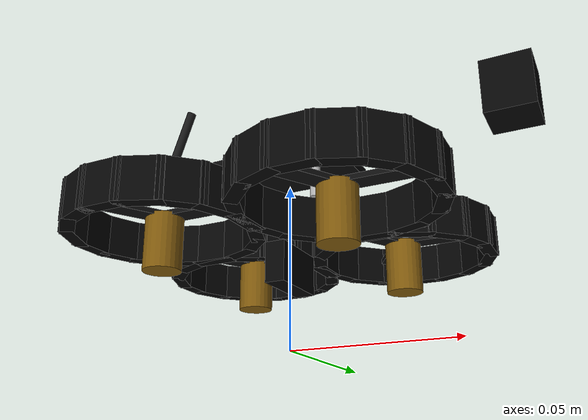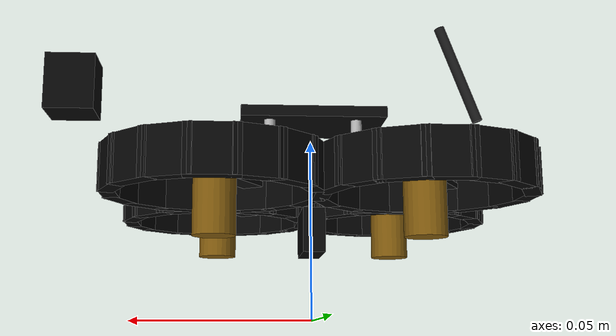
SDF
<?xml version="1.0" encoding="UTF-8"?>
<sdf version='1.9'>
  <model name='pavo_femto'>
    <pose>0 0 0.03000 0 0 0</pose>
    <self_collide>false</self_collide>
    <static>false</static>
    <link name="base_link">
      <inertial>
        <mass>0.034800</mass>
        <inertia>
          <ixx>2.840e-05</ixx>
          <ixy>0</ixy>
          <ixz>0</ixz>
          <iyy>2.840e-05</iyy>
          <iyz>0</iyz>
          <izz>5.192e-05</izz>
        </inertia>
      </inertial>
      <gravity>true</gravity>
      <velocity_decay/>

      <visual name="duct0_seg0">
        <pose>0.05257 -0.02652 0.00600 0.00000 0.00000 0.00000</pose>
        <geometry>
          <box><size>0.00411 0.01330 0.01200</size></box>
        </geometry>
        <material>
          <ambient>0.02 0.02 0.02 1</ambient>
          <diffuse>0.02 0.02 0.02 1</diffuse>
        </material>
      </visual>
      <visual name="duct0_seg1">
        <pose>0.05059 -0.01655 0.00600 0.00000 0.00000 0.39270</pose>
        <geometry>
          <box><size>0.00411 0.01330 0.01200</size></box>
        </geometry>
        <material>
          <ambient>0.02 0.02 0.02 1</ambient>
          <diffuse>0.02 0.02 0.02 1</diffuse>
        </material>
      </visual>
      <visual name="duct0_seg2">
        <pose>0.04494 -0.00809 0.00600 0.00000 0.00000 0.78540</pose>
        <geometry>
          <box><size>0.00411 0.01330 0.01200</size></box>
        </geometry>
        <material>
          <ambient>0.02 0.02 0.02 1</ambient>
          <diffuse>0.02 0.02 0.02 1</diffuse>
        </material>
      </visual>
      <visual name="duct0_seg3">
        <pose>0.03649 -0.00245 0.00600 0.00000 0.00000 1.17810</pose>
        <geometry>
          <box><size>0.00411 0.01330 0.01200</size></box>
        </geometry>
        <material>
          <ambient>0.02 0.02 0.02 1</ambient>
          <diffuse>0.02 0.02 0.02 1</diffuse>
        </material>
      </visual>
      <visual name="duct0_seg4">
        <pose>0.02652 -0.00046 0.00600 0.00000 0.00000 1.57080</pose>
        <geometry>
          <box><size>0.00411 0.01330 0.01200</size></box>
        </geometry>
        <material>
          <ambient>0.02 0.02 0.02 1</ambient>
          <diffuse>0.02 0.02 0.02 1</diffuse>
        </material>
      </visual>
      <visual name="duct0_seg5">
        <pose>0.01655 -0.00245 0.00600 0.00000 0.00000 1.96350</pose>
        <geometry>
          <box><size>0.00411 0.01330 0.01200</size></box>
        </geometry>
        <material>
          <ambient>0.02 0.02 0.02 1</ambient>
          <diffuse>0.02 0.02 0.02 1</diffuse>
        </material>
      </visual>
      <visual name="duct0_seg6">
        <pose>0.00809 -0.00809 0.00600 0.00000 0.00000 2.35619</pose>
        <geometry>
          <box><size>0.00411 0.01330 0.01200</size></box>
        </geometry>
        <material>
          <ambient>0.02 0.02 0.02 1</ambient>
          <diffuse>0.02 0.02 0.02 1</diffuse>
        </material>
      </visual>
      <visual name="duct0_seg7">
        <pose>0.00245 -0.01655 0.00600 0.00000 0.00000 2.74889</pose>
        <geometry>
          <box><size>0.00411 0.01330 0.01200</size></box>
        </geometry>
        <material>
          <ambient>0.02 0.02 0.02 1</ambient>
          <diffuse>0.02 0.02 0.02 1</diffuse>
        </material>
      </visual>
      <visual name="duct0_seg8">
        <pose>0.00046 -0.02652 0.00600 0.00000 0.00000 3.14159</pose>
        <geometry>
          <box><size>0.00411 0.01330 0.01200</size></box>
        </geometry>
        <material>
          <ambient>0.02 0.02 0.02 1</ambient>
          <diffuse>0.02 0.02 0.02 1</diffuse>
        </material>
      </visual>
      <visual name="duct0_seg9">
        <pose>0.00245 -0.03649 0.00600 0.00000 0.00000 3.53429</pose>
        <geometry>
          <box><size>0.00411 0.01330 0.01200</size></box>
        </geometry>
        <material>
          <ambient>0.02 0.02 0.02 1</ambient>
          <diffuse>0.02 0.02 0.02 1</diffuse>
        </material>
      </visual>
      <visual name="duct0_seg10">
        <pose>0.00809 -0.04494 0.00600 0.00000 0.00000 3.92699</pose>
        <geometry>
          <box><size>0.00411 0.01330 0.01200</size></box>
        </geometry>
        <material>
          <ambient>0.02 0.02 0.02 1</ambient>
          <diffuse>0.02 0.02 0.02 1</diffuse>
        </material>
      </visual>
      <visual name="duct0_seg11">
        <pose>0.01655 -0.05059 0.00600 0.00000 0.00000 4.31969</pose>
        <geometry>
          <box><size>0.00411 0.01330 0.01200</size></box>
        </geometry>
        <material>
          <ambient>0.02 0.02 0.02 1</ambient>
          <diffuse>0.02 0.02 0.02 1</diffuse>
        </material>
      </visual>
      <visual name="duct0_seg12">
        <pose>0.02652 -0.05257 0.00600 0.00000 0.00000 4.71239</pose>
        <geometry>
          <box><size>0.00411 0.01330 0.01200</size></box>
        </geometry>
        <material>
          <ambient>0.02 0.02 0.02 1</ambient>
          <diffuse>0.02 0.02 0.02 1</diffuse>
        </material>
      </visual>
      <visual name="duct0_seg13">
        <pose>0.03649 -0.05059 0.00600 0.00000 0.00000 5.10509</pose>
        <geometry>
          <box><size>0.00411 0.01330 0.01200</size></box>
        </geometry>
        <material>
          <ambient>0.02 0.02 0.02 1</ambient>
          <diffuse>0.02 0.02 0.02 1</diffuse>
        </material>
      </visual>
      <visual name="duct0_seg14">
        <pose>0.04494 -0.04494 0.00600 0.00000 0.00000 5.49779</pose>
        <geometry>
          <box><size>0.00411 0.01330 0.01200</size></box>
        </geometry>
        <material>
          <ambient>0.02 0.02 0.02 1</ambient>
          <diffuse>0.02 0.02 0.02 1</diffuse>
        </material>
      </visual>
      <visual name="duct0_seg15">
        <pose>0.05059 -0.03649 0.00600 0.00000 0.00000 5.89049</pose>
        <geometry>
          <box><size>0.00411 0.01330 0.01200</size></box>
        </geometry>
        <material>
          <ambient>0.02 0.02 0.02 1</ambient>
          <diffuse>0.02 0.02 0.02 1</diffuse>
        </material>
      </visual>
      <visual name="duct1_seg0">
        <pose>-0.00046 0.02652 0.00600 0.00000 0.00000 0.00000</pose>
        <geometry>
          <box><size>0.00411 0.01330 0.01200</size></box>
        </geometry>
        <material>
          <ambient>0.02 0.02 0.02 1</ambient>
          <diffuse>0.02 0.02 0.02 1</diffuse>
        </material>
      </visual>
      <visual name="duct1_seg1">
        <pose>-0.00245 0.03649 0.00600 0.00000 0.00000 0.39270</pose>
        <geometry>
          <box><size>0.00411 0.01330 0.01200</size></box>
        </geometry>
        <material>
          <ambient>0.02 0.02 0.02 1</ambient>
          <diffuse>0.02 0.02 0.02 1</diffuse>
        </material>
      </visual>
      <visual name="duct1_seg2">
        <pose>-0.00809 0.04494 0.00600 0.00000 0.00000 0.78540</pose>
        <geometry>
          <box><size>0.00411 0.01330 0.01200</size></box>
        </geometry>
        <material>
          <ambient>0.02 0.02 0.02 1</ambient>
          <diffuse>0.02 0.02 0.02 1</diffuse>
        </material>
      </visual>
      <visual name="duct1_seg3">
        <pose>-0.01655 0.05059 0.00600 0.00000 0.00000 1.17810</pose>
        <geometry>
          <box><size>0.00411 0.01330 0.01200</size></box>
        </geometry>
        <material>
          <ambient>0.02 0.02 0.02 1</ambient>
          <diffuse>0.02 0.02 0.02 1</diffuse>
        </material>
      </visual>
      <visual name="duct1_seg4">
        <pose>-0.02652 0.05257 0.00600 0.00000 0.00000 1.57080</pose>
        <geometry>
          <box><size>0.00411 0.01330 0.01200</size></box>
        </geometry>
        <material>
          <ambient>0.02 0.02 0.02 1</ambient>
          <diffuse>0.02 0.02 0.02 1</diffuse>
        </material>
      </visual>
      <visual name="duct1_seg5">
        <pose>-0.03649 0.05059 0.00600 0.00000 0.00000 1.96350</pose>
        <geometry>
          <box><size>0.00411 0.01330 0.01200</size></box>
        </geometry>
        <material>
          <ambient>0.02 0.02 0.02 1</ambient>
          <diffuse>0.02 0.02 0.02 1</diffuse>
        </material>
      </visual>
      <visual name="duct1_seg6">
        <pose>-0.04494 0.04494 0.00600 0.00000 0.00000 2.35619</pose>
        <geometry>
          <box><size>0.00411 0.01330 0.01200</size></box>
        </geometry>
        <material>
          <ambient>0.02 0.02 0.02 1</ambient>
          <diffuse>0.02 0.02 0.02 1</diffuse>
        </material>
      </visual>
      <visual name="duct1_seg7">
        <pose>-0.05059 0.03649 0.00600 0.00000 0.00000 2.74889</pose>
        <geometry>
          <box><size>0.00411 0.01330 0.01200</size></box>
        </geometry>
        <material>
          <ambient>0.02 0.02 0.02 1</ambient>
          <diffuse>0.02 0.02 0.02 1</diffuse>
        </material>
      </visual>
      <visual name="duct1_seg8">
        <pose>-0.05257 0.02652 0.00600 0.00000 0.00000 3.14159</pose>
        <geometry>
          <box><size>0.00411 0.01330 0.01200</size></box>
        </geometry>
        <material>
          <ambient>0.02 0.02 0.02 1</ambient>
          <diffuse>0.02 0.02 0.02 1</diffuse>
        </material>
      </visual>
      <visual name="duct1_seg9">
        <pose>-0.05059 0.01655 0.00600 0.00000 0.00000 3.53429</pose>
        <geometry>
          <box><size>0.00411 0.01330 0.01200</size></box>
        </geometry>
        <material>
          <ambient>0.02 0.02 0.02 1</ambient>
          <diffuse>0.02 0.02 0.02 1</diffuse>
        </material>
      </visual>
      <visual name="duct1_seg10">
        <pose>-0.04494 0.00809 0.00600 0.00000 0.00000 3.92699</pose>
        <geometry>
          <box><size>0.00411 0.01330 0.01200</size></box>
        </geometry>
        <material>
          <ambient>0.02 0.02 0.02 1</ambient>
          <diffuse>0.02 0.02 0.02 1</diffuse>
        </material>
      </visual>
      <visual name="duct1_seg11">
        <pose>-0.03649 0.00245 0.00600 0.00000 0.00000 4.31969</pose>
        <geometry>
          <box><size>0.00411 0.01330 0.01200</size></box>
        </geometry>
        <material>
          <ambient>0.02 0.02 0.02 1</ambient>
          <diffuse>0.02 0.02 0.02 1</diffuse>
        </material>
      </visual>
      <visual name="duct1_seg12">
        <pose>-0.02652 0.00046 0.00600 0.00000 0.00000 4.71239</pose>
        <geometry>
          <box><size>0.00411 0.01330 0.01200</size></box>
        </geometry>
        <material>
          <ambient>0.02 0.02 0.02 1</ambient>
          <diffuse>0.02 0.02 0.02 1</diffuse>
        </material>
      </visual>
      <visual name="duct1_seg13">
        <pose>-0.01655 0.00245 0.00600 0.00000 0.00000 5.10509</pose>
        <geometry>
          <box><size>0.00411 0.01330 0.01200</size></box>
        </geometry>
        <material>
          <ambient>0.02 0.02 0.02 1</ambient>
          <diffuse>0.02 0.02 0.02 1</diffuse>
        </material>
      </visual>
      <visual name="duct1_seg14">
        <pose>-0.00809 0.00809 0.00600 0.00000 0.00000 5.49779</pose>
        <geometry>
          <box><size>0.00411 0.01330 0.01200</size></box>
        </geometry>
        <material>
          <ambient>0.02 0.02 0.02 1</ambient>
          <diffuse>0.02 0.02 0.02 1</diffuse>
        </material>
      </visual>
      <visual name="duct1_seg15">
        <pose>-0.00245 0.01655 0.00600 0.00000 0.00000 5.89049</pose>
        <geometry>
          <box><size>0.00411 0.01330 0.01200</size></box>
        </geometry>
        <material>
          <ambient>0.02 0.02 0.02 1</ambient>
          <diffuse>0.02 0.02 0.02 1</diffuse>
        </material>
      </visual>
      <visual name="duct2_seg0">
        <pose>0.05257 0.02652 0.00600 0.00000 0.00000 0.00000</pose>
        <geometry>
          <box><size>0.00411 0.01330 0.01200</size></box>
        </geometry>
        <material>
          <ambient>0.02 0.02 0.02 1</ambient>
          <diffuse>0.02 0.02 0.02 1</diffuse>
        </material>
      </visual>
      <visual name="duct2_seg1">
        <pose>0.05059 0.03649 0.00600 0.00000 0.00000 0.39270</pose>
        <geometry>
          <box><size>0.00411 0.01330 0.01200</size></box>
        </geometry>
        <material>
          <ambient>0.02 0.02 0.02 1</ambient>
          <diffuse>0.02 0.02 0.02 1</diffuse>
        </material>
      </visual>
      <visual name="duct2_seg2">
        <pose>0.04494 0.04494 0.00600 0.00000 0.00000 0.78540</pose>
        <geometry>
          <box><size>0.00411 0.01330 0.01200</size></box>
        </geometry>
        <material>
          <ambient>0.02 0.02 0.02 1</ambient>
          <diffuse>0.02 0.02 0.02 1</diffuse>
        </material>
      </visual>
      <visual name="duct2_seg3">
        <pose>0.03649 0.05059 0.00600 0.00000 0.00000 1.17810</pose>
        <geometry>
          <box><size>0.00411 0.01330 0.01200</size></box>
        </geometry>
        <material>
          <ambient>0.02 0.02 0.02 1</ambient>
          <diffuse>0.02 0.02 0.02 1</diffuse>
        </material>
      </visual>
      <visual name="duct2_seg4">
        <pose>0.02652 0.05257 0.00600 0.00000 0.00000 1.57080</pose>
        <geometry>
          <box><size>0.00411 0.01330 0.01200</size></box>
        </geometry>
        <material>
          <ambient>0.02 0.02 0.02 1</ambient>
          <diffuse>0.02 0.02 0.02 1</diffuse>
        </material>
      </visual>
      <visual name="duct2_seg5">
        <pose>0.01655 0.05059 0.00600 0.00000 0.00000 1.96350</pose>
        <geometry>
          <box><size>0.00411 0.01330 0.01200</size></box>
        </geometry>
        <material>
          <ambient>0.02 0.02 0.02 1</ambient>
          <diffuse>0.02 0.02 0.02 1</diffuse>
        </material>
      </visual>
      <visual name="duct2_seg6">
        <pose>0.00809 0.04494 0.00600 0.00000 0.00000 2.35619</pose>
        <geometry>
          <box><size>0.00411 0.01330 0.01200</size></box>
        </geometry>
        <material>
          <ambient>0.02 0.02 0.02 1</ambient>
          <diffuse>0.02 0.02 0.02 1</diffuse>
        </material>
      </visual>
      <visual name="duct2_seg7">
        <pose>0.00245 0.03649 0.00600 0.00000 0.00000 2.74889</pose>
        <geometry>
          <box><size>0.00411 0.01330 0.01200</size></box>
        </geometry>
        <material>
          <ambient>0.02 0.02 0.02 1</ambient>
          <diffuse>0.02 0.02 0.02 1</diffuse>
        </material>
      </visual>
      <visual name="duct2_seg8">
        <pose>0.00046 0.02652 0.00600 0.00000 0.00000 3.14159</pose>
        <geometry>
          <box><size>0.00411 0.01330 0.01200</size></box>
        </geometry>
        <material>
          <ambient>0.02 0.02 0.02 1</ambient>
          <diffuse>0.02 0.02 0.02 1</diffuse>
        </material>
      </visual>
      <visual name="duct2_seg9">
        <pose>0.00245 0.01655 0.00600 0.00000 0.00000 3.53429</pose>
        <geometry>
          <box><size>0.00411 0.01330 0.01200</size></box>
        </geometry>
        <material>
          <ambient>0.02 0.02 0.02 1</ambient>
          <diffuse>0.02 0.02 0.02 1</diffuse>
        </material>
      </visual>
      <visual name="duct2_seg10">
        <pose>0.00809 0.00809 0.00600 0.00000 0.00000 3.92699</pose>
        <geometry>
          <box><size>0.00411 0.01330 0.01200</size></box>
        </geometry>
        <material>
          <ambient>0.02 0.02 0.02 1</ambient>
          <diffuse>0.02 0.02 0.02 1</diffuse>
        </material>
      </visual>
      <visual name="duct2_seg11">
        <pose>0.01655 0.00245 0.00600 0.00000 0.00000 4.31969</pose>
        <geometry>
          <box><size>0.00411 0.01330 0.01200</size></box>
        </geometry>
        <material>
          <ambient>0.02 0.02 0.02 1</ambient>
          <diffuse>0.02 0.02 0.02 1</diffuse>
        </material>
      </visual>
      <visual name="duct2_seg12">
        <pose>0.02652 0.00046 0.00600 0.00000 0.00000 4.71239</pose>
        <geometry>
          <box><size>0.00411 0.01330 0.01200</size></box>
        </geometry>
        <material>
          <ambient>0.02 0.02 0.02 1</ambient>
          <diffuse>0.02 0.02 0.02 1</diffuse>
        </material>
      </visual>
      <visual name="duct2_seg13">
        <pose>0.03649 0.00245 0.00600 0.00000 0.00000 5.10509</pose>
        <geometry>
          <box><size>0.00411 0.01330 0.01200</size></box>
        </geometry>
        <material>
          <ambient>0.02 0.02 0.02 1</ambient>
          <diffuse>0.02 0.02 0.02 1</diffuse>
        </material>
      </visual>
      <visual name="duct2_seg14">
        <pose>0.04494 0.00809 0.00600 0.00000 0.00000 5.49779</pose>
        <geometry>
          <box><size>0.00411 0.01330 0.01200</size></box>
        </geometry>
        <material>
          <ambient>0.02 0.02 0.02 1</ambient>
          <diffuse>0.02 0.02 0.02 1</diffuse>
        </material>
      </visual>
      <visual name="duct2_seg15">
        <pose>0.05059 0.01655 0.00600 0.00000 0.00000 5.89049</pose>
        <geometry>
          <box><size>0.00411 0.01330 0.01200</size></box>
        </geometry>
        <material>
          <ambient>0.02 0.02 0.02 1</ambient>
          <diffuse>0.02 0.02 0.02 1</diffuse>
        </material>
      </visual>
      <visual name="duct3_seg0">
        <pose>-0.00046 -0.02652 0.00600 0.00000 0.00000 0.00000</pose>
        <geometry>
          <box><size>0.00411 0.01330 0.01200</size></box>
        </geometry>
        <material>
          <ambient>0.02 0.02 0.02 1</ambient>
          <diffuse>0.02 0.02 0.02 1</diffuse>
        </material>
      </visual>
      <visual name="duct3_seg1">
        <pose>-0.00245 -0.01655 0.00600 0.00000 0.00000 0.39270</pose>
        <geometry>
          <box><size>0.00411 0.01330 0.01200</size></box>
        </geometry>
        <material>
          <ambient>0.02 0.02 0.02 1</ambient>
          <diffuse>0.02 0.02 0.02 1</diffuse>
        </material>
      </visual>
      <visual name="duct3_seg2">
        <pose>-0.00809 -0.00809 0.00600 0.00000 0.00000 0.78540</pose>
        <geometry>
          <box><size>0.00411 0.01330 0.01200</size></box>
        </geometry>
        <material>
          <ambient>0.02 0.02 0.02 1</ambient>
          <diffuse>0.02 0.02 0.02 1</diffuse>
        </material>
      </visual>
      <visual name="duct3_seg3">
        <pose>-0.01655 -0.00245 0.00600 0.00000 0.00000 1.17810</pose>
        <geometry>
          <box><size>0.00411 0.01330 0.01200</size></box>
        </geometry>
        <material>
          <ambient>0.02 0.02 0.02 1</ambient>
          <diffuse>0.02 0.02 0.02 1</diffuse>
        </material>
      </visual>
      <visual name="duct3_seg4">
        <pose>-0.02652 -0.00046 0.00600 0.00000 0.00000 1.57080</pose>
        <geometry>
          <box><size>0.00411 0.01330 0.01200</size></box>
        </geometry>
        <material>
          <ambient>0.02 0.02 0.02 1</ambient>
          <diffuse>0.02 0.02 0.02 1</diffuse>
        </material>
      </visual>
      <visual name="duct3_seg5">
        <pose>-0.03649 -0.00245 0.00600 0.00000 0.00000 1.96350</pose>
        <geometry>
          <box><size>0.00411 0.01330 0.01200</size></box>
        </geometry>
        <material>
          <ambient>0.02 0.02 0.02 1</ambient>
          <diffuse>0.02 0.02 0.02 1</diffuse>
        </material>
      </visual>
      <visual name="duct3_seg6">
        <pose>-0.04494 -0.00809 0.00600 0.00000 0.00000 2.35619</pose>
        <geometry>
          <box><size>0.00411 0.01330 0.01200</size></box>
        </geometry>
        <material>
          <ambient>0.02 0.02 0.02 1</ambient>
          <diffuse>0.02 0.02 0.02 1</diffuse>
        </material>
      </visual>
      <visual name="duct3_seg7">
        <pose>-0.05059 -0.01655 0.00600 0.00000 0.00000 2.74889</pose>
        <geometry>
          <box><size>0.00411 0.01330 0.01200</size></box>
        </geometry>
        <material>
          <ambient>0.02 0.02 0.02 1</ambient>
          <diffuse>0.02 0.02 0.02 1</diffuse>
        </material>
      </visual>
      <visual name="duct3_seg8">
        <pose>-0.05257 -0.02652 0.00600 0.00000 0.00000 3.14159</pose>
        <geometry>
          <box><size>0.00411 0.01330 0.01200</size></box>
        </geometry>
        <material>
          <ambient>0.02 0.02 0.02 1</ambient>
          <diffuse>0.02 0.02 0.02 1</diffuse>
        </material>
      </visual>
      <visual name="duct3_seg9">
        <pose>-0.05059 -0.03649 0.00600 0.00000 0.00000 3.53429</pose>
        <geometry>
          <box><size>0.00411 0.01330 0.01200</size></box>
        </geometry>
        <material>
          <ambient>0.02 0.02 0.02 1</ambient>
          <diffuse>0.02 0.02 0.02 1</diffuse>
        </material>
      </visual>
      <visual name="duct3_seg10">
        <pose>-0.04494 -0.04494 0.00600 0.00000 0.00000 3.92699</pose>
        <geometry>
          <box><size>0.00411 0.01330 0.01200</size></box>
        </geometry>
        <material>
          <ambient>0.02 0.02 0.02 1</ambient>
          <diffuse>0.02 0.02 0.02 1</diffuse>
        </material>
      </visual>
      <visual name="duct3_seg11">
        <pose>-0.03649 -0.05059 0.00600 0.00000 0.00000 4.31969</pose>
        <geometry>
          <box><size>0.00411 0.01330 0.01200</size></box>
        </geometry>
        <material>
          <ambient>0.02 0.02 0.02 1</ambient>
          <diffuse>0.02 0.02 0.02 1</diffuse>
        </material>
      </visual>
      <visual name="duct3_seg12">
        <pose>-0.02652 -0.05257 0.00600 0.00000 0.00000 4.71239</pose>
        <geometry>
          <box><size>0.00411 0.01330 0.01200</size></box>
        </geometry>
        <material>
          <ambient>0.02 0.02 0.02 1</ambient>
          <diffuse>0.02 0.02 0.02 1</diffuse>
        </material>
      </visual>
      <visual name="duct3_seg13">
        <pose>-0.01655 -0.05059 0.00600 0.00000 0.00000 5.10509</pose>
        <geometry>
          <box><size>0.00411 0.01330 0.01200</size></box>
        </geometry>
        <material>
          <ambient>0.02 0.02 0.02 1</ambient>
          <diffuse>0.02 0.02 0.02 1</diffuse>
        </material>
      </visual>
      <visual name="duct3_seg14">
        <pose>-0.00809 -0.04494 0.00600 0.00000 0.00000 5.49779</pose>
        <geometry>
          <box><size>0.00411 0.01330 0.01200</size></box>
        </geometry>
        <material>
          <ambient>0.02 0.02 0.02 1</ambient>
          <diffuse>0.02 0.02 0.02 1</diffuse>
        </material>
      </visual>
      <visual name="duct3_seg15">
        <pose>-0.00245 -0.03649 0.00600 0.00000 0.00000 5.89049</pose>
        <geometry>
          <box><size>0.00411 0.01330 0.01200</size></box>
        </geometry>
        <material>
          <ambient>0.02 0.02 0.02 1</ambient>
          <diffuse>0.02 0.02 0.02 1</diffuse>
        </material>
      </visual>

      <visual name="standoff_0">
        <pose>0.01200 0.00800 0.01900 0.00000 0.00000 0.00000</pose>
        <geometry>
          <cylinder><radius>0.00150</radius><length>0.01400</length></cylinder>
        </geometry>
        <material><ambient>0.6 0.6 0.6 1</ambient><diffuse>0.7 0.7 0.7 1</diffuse></material>
      </visual>
      <visual name="standoff_1">
        <pose>0.01200 -0.00800 0.01900 0.00000 0.00000 0.00000</pose>
        <geometry>
          <cylinder><radius>0.00150</radius><length>0.01400</length></cylinder>
        </geometry>
        <material><ambient>0.6 0.6 0.6 1</ambient><diffuse>0.7 0.7 0.7 1</diffuse></material>
      </visual>
      <visual name="standoff_2">
        <pose>-0.01200 0.00800 0.01900 0.00000 0.00000 0.00000</pose>
        <geometry>
          <cylinder><radius>0.00150</radius><length>0.01400</length></cylinder>
        </geometry>
        <material><ambient>0.6 0.6 0.6 1</ambient><diffuse>0.7 0.7 0.7 1</diffuse></material>
      </visual>
      <visual name="standoff_3">
        <pose>-0.01200 -0.00800 0.01900 0.00000 0.00000 0.00000</pose>
        <geometry>
          <cylinder><radius>0.00150</radius><length>0.01400</length></cylinder>
        </geometry>
        <material><ambient>0.6 0.6 0.6 1</ambient><diffuse>0.7 0.7 0.7 1</diffuse></material>
      </visual>
      <visual name="top_plate">
        <pose>0.00000 0.00000 0.02600 0.00000 0.00000 0.00000</pose>
        <geometry>
          <box><size>0.04000 0.02600 0.00300</size></box>
        </geometry>
        <material><ambient>0.02 0.02 0.02 1</ambient><diffuse>0.03 0.03 0.03 1</diffuse></material>
      </visual>
      <visual name="camera_pod">
        <pose>0.06762 0.00000 0.03550 0.00000 -0.00000 0.00000</pose>
        <geometry>
          <box><size>0.01400 0.01400 0.01600</size></box>
        </geometry>
        <material><ambient>0.02 0.02 0.02 1</ambient><diffuse>0.02 0.02 0.02 1</diffuse></material>
      </visual>
      <visual name="vtx_antenna">
        <pose>-0.04338 0.00000 0.04100 0.00000 0.34907 0.00000</pose>
        <geometry>
          <cylinder><radius>0.00150</radius><length>0.03000</length></cylinder>
        </geometry>
        <material><ambient>0.05 0.05 0.05 1</ambient><diffuse>0.1 0.1 0.1 1</diffuse></material>
      </visual>
      <visual name="skid">
        <pose>0.00000 0.00000 -0.00600 0.00000 0.00000 0.00000</pose>
        <geometry>
          <box><size>0.00600 0.02000 0.01200</size></box>
        </geometry>
        <material><ambient>0.02 0.02 0.02 1</ambient><diffuse>0.02 0.02 0.02 1</diffuse></material>
      </visual>
      <collision name="base_link_collision">
        <pose>0.00000 0.00000 0.01300 0.00000 0.00000 0.00000</pose>
        <geometry>
          <box><size>0.10925 0.10925 0.02900</size></box>
        </geometry>
        <surface>
          <contact><ode><min_depth>0.001</min_depth><max_vel>0</max_vel></ode></contact>
          <friction><ode/></friction>
        </surface>
      </collision>
      <sensor name="air_pressure_sensor" type="air_pressure">
        <always_on>1</always_on>
        <update_rate>50</update_rate>
        <air_pressure><pressure><noise type="gaussian"><mean>0</mean><stddev>0.01</stddev></noise></pressure></air_pressure>
      </sensor>
      <sensor name="imu_sensor" type="imu">
        <always_on>1</always_on>
        <update_rate>250</update_rate>
        <imu>
          <angular_velocity>
            <x><noise type="gaussian"><mean>0</mean><stddev>0.00018665</stddev><dynamic_bias_stddev>3.8785e-05</dynamic_bias_stddev><dynamic_bias_correlation_time>1000</dynamic_bias_correlation_time></noise></x>
            <y><noise type="gaussian"><mean>0</mean><stddev>0.00018665</stddev><dynamic_bias_stddev>3.8785e-05</dynamic_bias_stddev><dynamic_bias_correlation_time>1000</dynamic_bias_correlation_time></noise></y>
            <z><noise type="gaussian"><mean>0</mean><stddev>0.00018665</stddev><dynamic_bias_stddev>3.8785e-05</dynamic_bias_stddev><dynamic_bias_correlation_time>1000</dynamic_bias_correlation_time></noise></z>
          </angular_velocity>
          <linear_acceleration>
            <x><noise type="gaussian"><mean>0</mean><stddev>0.00186</stddev><dynamic_bias_stddev>0.006</dynamic_bias_stddev><dynamic_bias_correlation_time>300</dynamic_bias_correlation_time></noise></x>
            <y><noise type="gaussian"><mean>0</mean><stddev>0.00186</stddev><dynamic_bias_stddev>0.006</dynamic_bias_stddev><dynamic_bias_correlation_time>300</dynamic_bias_correlation_time></noise></y>
            <z><noise type="gaussian"><mean>0</mean><stddev>0.00186</stddev><dynamic_bias_stddev>0.006</dynamic_bias_stddev><dynamic_bias_correlation_time>300</dynamic_bias_correlation_time></noise></z>
          </linear_acceleration>
        </imu>
      </sensor>
      <sensor name="navsat_sensor" type="navsat">
        <always_on>1</always_on>
        <update_rate>30</update_rate>
      </sensor>
      <sensor name="camera" type="camera">
        <pose>0.06762 0.00000 0.03550 0.00000 -0.00000 0.00000</pose>
        <camera>
          <horizontal_fov>1.57080</horizontal_fov>
          <image><width>640</width><height>480</height></image>
          <clip><near>0.05</near><far>100</far></clip>
        </camera>
        <always_on>1</always_on>
        <update_rate>30</update_rate>
        <visualize>true</visualize>
        <topic>camera</topic>
      </sensor>
      <sensor name="depth_camera" type="depth_camera">
        <pose>0.06762 0.00000 0.03550 0.00000 -0.00000 0.00000</pose>
        <camera>
          <horizontal_fov>1.57080</horizontal_fov>
          <image><width>640</width><height>480</height><format>R_FLOAT32</format></image>
          <clip><near>0.1</near><far>20.0</far></clip>
        </camera>
        <always_on>1</always_on>
        <update_rate>30</update_rate>
        <visualize>false</visualize>
        <topic>depth_camera</topic>
      </sensor>
      <sensor name="segmentation_camera" type="segmentation">
        <pose>0.06762 0.00000 0.03550 0.00000 -0.00000 0.00000</pose>
        <camera>
          <segmentation_type>semantic</segmentation_type>
          <horizontal_fov>1.57080</horizontal_fov>
          <image><width>640</width><height>480</height></image>
          <clip><near>0.05</near><far>100</far></clip>
        </camera>
        <always_on>1</always_on>
        <update_rate>30</update_rate>
        <visualize>false</visualize>
        <topic>semantic_segmentation</topic>
      </sensor>
    </link>

    <link name="rotor_0">
      <gravity>true</gravity>
      <self_collide>false</self_collide>
      <velocity_decay/>
      <pose>0.02652 -0.02652 0.00600 0.00000 0.00000 0.00000</pose>
      <inertial>
        <mass>0.005000</mass>
        <inertia>
          <ixx>6.667e-07</ixx>
          <iyy>6.667e-07</iyy>
          <izz>1.000e-06</izz>
        </inertia>
      </inertial>
      <visual name="rotor_0_motor">
        <pose>0 0 -0.00800 0 0 0</pose>
        <geometry>
          <cylinder><radius>0.00550</radius><length>0.01600</length></cylinder>
        </geometry>
        <material>
          <ambient>0.3 0.2 0.05 1</ambient>
          <diffuse>0.5 0.35 0.05 1</diffuse>
          <specular>0.5 0.5 0.5 1</specular>
        </material>
      </visual>

      <visual name="rotor_0_blade0">
        <pose>0.01000 0.00000 0.00000 0.00000 0.00000 0.00000</pose>
        <geometry>
          <box><size>0.02000 0.00600 0.00150</size></box>
        </geometry>
        <material>
          <ambient>0.05 0.05 0.05 1</ambient>
          <diffuse>0.05 0.05 0.05 1</diffuse>
        </material>
      </visual>
      <visual name="rotor_0_blade1">
        <pose>-0.00500 0.00866 0.00000 0.00000 0.00000 2.09440</pose>
        <geometry>
          <box><size>0.02000 0.00600 0.00150</size></box>
        </geometry>
        <material>
          <ambient>0.05 0.05 0.05 1</ambient>
          <diffuse>0.05 0.05 0.05 1</diffuse>
        </material>
      </visual>
      <visual name="rotor_0_blade2">
        <pose>-0.00500 -0.00866 0.00000 0.00000 0.00000 4.18879</pose>
        <geometry>
          <box><size>0.02000 0.00600 0.00150</size></box>
        </geometry>
        <material>
          <ambient>0.05 0.05 0.05 1</ambient>
          <diffuse>0.05 0.05 0.05 1</diffuse>
        </material>
      </visual>
      <collision name="rotor_0_collision">
        <pose>0 0 0 0 0 0</pose>
        <geometry>
          <box><size>0.04000 0.01200 0.00300</size></box>
        </geometry>
      </collision>
    </link>
    <joint name="rotor_0_joint" type="revolute">
      <parent>base_link</parent>
      <child>rotor_0</child>
      <axis>
        <xyz>0 0 1</xyz>
        <limit><lower>-1e+16</lower><upper>1e+16</upper></limit>
        <dynamics><spring_reference>0</spring_reference><spring_stiffness>0</spring_stiffness></dynamics>
      </axis>
    </joint>
    <link name="rotor_1">
      <gravity>true</gravity>
      <self_collide>false</self_collide>
      <velocity_decay/>
      <pose>-0.02652 0.02652 0.00600 0.00000 0.00000 0.00000</pose>
      <inertial>
        <mass>0.005000</mass>
        <inertia>
          <ixx>6.667e-07</ixx>
          <iyy>6.667e-07</iyy>
          <izz>1.000e-06</izz>
        </inertia>
      </inertial>
      <visual name="rotor_1_motor">
        <pose>0 0 -0.00800 0 0 0</pose>
        <geometry>
          <cylinder><radius>0.00550</radius><length>0.01600</length></cylinder>
        </geometry>
        <material>
          <ambient>0.3 0.2 0.05 1</ambient>
          <diffuse>0.5 0.35 0.05 1</diffuse>
          <specular>0.5 0.5 0.5 1</specular>
        </material>
      </visual>

      <visual name="rotor_1_blade0">
        <pose>0.01000 0.00000 0.00000 0.00000 0.00000 0.00000</pose>
        <geometry>
          <box><size>0.02000 0.00600 0.00150</size></box>
        </geometry>
        <material>
          <ambient>0.05 0.05 0.05 1</ambient>
          <diffuse>0.05 0.05 0.05 1</diffuse>
        </material>
      </visual>
      <visual name="rotor_1_blade1">
        <pose>-0.00500 0.00866 0.00000 0.00000 0.00000 2.09440</pose>
        <geometry>
          <box><size>0.02000 0.00600 0.00150</size></box>
        </geometry>
        <material>
          <ambient>0.05 0.05 0.05 1</ambient>
          <diffuse>0.05 0.05 0.05 1</diffuse>
        </material>
      </visual>
      <visual name="rotor_1_blade2">
        <pose>-0.00500 -0.00866 0.00000 0.00000 0.00000 4.18879</pose>
        <geometry>
          <box><size>0.02000 0.00600 0.00150</size></box>
        </geometry>
        <material>
          <ambient>0.05 0.05 0.05 1</ambient>
          <diffuse>0.05 0.05 0.05 1</diffuse>
        </material>
      </visual>
      <collision name="rotor_1_collision">
        <pose>0 0 0 0 0 0</pose>
        <geometry>
          <box><size>0.04000 0.01200 0.00300</size></box>
        </geometry>
      </collision>
    </link>
    <joint name="rotor_1_joint" type="revolute">
      <parent>base_link</parent>
      <child>rotor_1</child>
      <axis>
        <xyz>0 0 1</xyz>
        <limit><lower>-1e+16</lower><upper>1e+16</upper></limit>
        <dynamics><spring_reference>0</spring_reference><spring_stiffness>0</spring_stiffness></dynamics>
      </axis>
    </joint>
    <link name="rotor_2">
      <gravity>true</gravity>
      <self_collide>false</self_collide>
      <velocity_decay/>
      <pose>0.02652 0.02652 0.00600 0.00000 0.00000 0.00000</pose>
      <inertial>
        <mass>0.005000</mass>
        <inertia>
          <ixx>6.667e-07</ixx>
          <iyy>6.667e-07</iyy>
          <izz>1.000e-06</izz>
        </inertia>
      </inertial>
      <visual name="rotor_2_motor">
        <pose>0 0 -0.00800 0 0 0</pose>
        <geometry>
          <cylinder><radius>0.00550</radius><length>0.01600</length></cylinder>
        </geometry>
        <material>
          <ambient>0.3 0.2 0.05 1</ambient>
          <diffuse>0.5 0.35 0.05 1</diffuse>
          <specular>0.5 0.5 0.5 1</specular>
        </material>
      </visual>

      <visual name="rotor_2_blade0">
        <pose>0.01000 0.00000 0.00000 0.00000 0.00000 0.00000</pose>
        <geometry>
          <box><size>0.02000 0.00600 0.00150</size></box>
        </geometry>
        <material>
          <ambient>0.05 0.05 0.05 1</ambient>
          <diffuse>0.05 0.05 0.05 1</diffuse>
        </material>
      </visual>
      <visual name="rotor_2_blade1">
        <pose>-0.00500 0.00866 0.00000 0.00000 0.00000 2.09440</pose>
        <geometry>
          <box><size>0.02000 0.00600 0.00150</size></box>
        </geometry>
        <material>
          <ambient>0.05 0.05 0.05 1</ambient>
          <diffuse>0.05 0.05 0.05 1</diffuse>
        </material>
      </visual>
      <visual name="rotor_2_blade2">
        <pose>-0.00500 -0.00866 0.00000 0.00000 0.00000 4.18879</pose>
        <geometry>
          <box><size>0.02000 0.00600 0.00150</size></box>
        </geometry>
        <material>
          <ambient>0.05 0.05 0.05 1</ambient>
          <diffuse>0.05 0.05 0.05 1</diffuse>
        </material>
      </visual>
      <collision name="rotor_2_collision">
        <pose>0 0 0 0 0 0</pose>
        <geometry>
          <box><size>0.04000 0.01200 0.00300</size></box>
        </geometry>
      </collision>
    </link>
    <joint name="rotor_2_joint" type="revolute">
      <parent>base_link</parent>
      <child>rotor_2</child>
      <axis>
        <xyz>0 0 1</xyz>
        <limit><lower>-1e+16</lower><upper>1e+16</upper></limit>
        <dynamics><spring_reference>0</spring_reference><spring_stiffness>0</spring_stiffness></dynamics>
      </axis>
    </joint>
    <link name="rotor_3">
      <gravity>true</gravity>
      <self_collide>false</self_collide>
      <velocity_decay/>
      <pose>-0.02652 -0.02652 0.00600 0.00000 0.00000 0.00000</pose>
      <inertial>
        <mass>0.005000</mass>
        <inertia>
          <ixx>6.667e-07</ixx>
          <iyy>6.667e-07</iyy>
          <izz>1.000e-06</izz>
        </inertia>
      </inertial>
      <visual name="rotor_3_motor">
        <pose>0 0 -0.00800 0 0 0</pose>
        <geometry>
          <cylinder><radius>0.00550</radius><length>0.01600</length></cylinder>
        </geometry>
        <material>
          <ambient>0.3 0.2 0.05 1</ambient>
          <diffuse>0.5 0.35 0.05 1</diffuse>
          <specular>0.5 0.5 0.5 1</specular>
        </material>
      </visual>

      <visual name="rotor_3_blade0">
        <pose>0.01000 0.00000 0.00000 0.00000 0.00000 0.00000</pose>
        <geometry>
          <box><size>0.02000 0.00600 0.00150</size></box>
        </geometry>
        <material>
          <ambient>0.05 0.05 0.05 1</ambient>
          <diffuse>0.05 0.05 0.05 1</diffuse>
        </material>
      </visual>
      <visual name="rotor_3_blade1">
        <pose>-0.00500 0.00866 0.00000 0.00000 0.00000 2.09440</pose>
        <geometry>
          <box><size>0.02000 0.00600 0.00150</size></box>
        </geometry>
        <material>
          <ambient>0.05 0.05 0.05 1</ambient>
          <diffuse>0.05 0.05 0.05 1</diffuse>
        </material>
      </visual>
      <visual name="rotor_3_blade2">
        <pose>-0.00500 -0.00866 0.00000 0.00000 0.00000 4.18879</pose>
        <geometry>
          <box><size>0.02000 0.00600 0.00150</size></box>
        </geometry>
        <material>
          <ambient>0.05 0.05 0.05 1</ambient>
          <diffuse>0.05 0.05 0.05 1</diffuse>
        </material>
      </visual>
      <collision name="rotor_3_collision">
        <pose>0 0 0 0 0 0</pose>
        <geometry>
          <box><size>0.04000 0.01200 0.00300</size></box>
        </geometry>
      </collision>
    </link>
    <joint name="rotor_3_joint" type="revolute">
      <parent>base_link</parent>
      <child>rotor_3</child>
      <axis>
        <xyz>0 0 1</xyz>
        <limit><lower>-1e+16</lower><upper>1e+16</upper></limit>
        <dynamics><spring_reference>0</spring_reference><spring_stiffness>0</spring_stiffness></dynamics>
      </axis>
    </joint>

    <plugin filename="gz-sim-multicopter-motor-model-system" name="gz::sim::systems::MulticopterMotorModel">
      <jointName>rotor_0_joint</jointName>
      <linkName>rotor_0</linkName>
      <turningDirection>ccw</turningDirection>
      <timeConstantUp>0.005</timeConstantUp>
      <timeConstantDown>0.01</timeConstantDown>
      <maxRotVelocity>12000.0</maxRotVelocity>
      <motorConstant>3.125000e-09</motorConstant>
      <momentConstant>0.02</momentConstant>
      <commandSubTopic>command/motor_speed</commandSubTopic>
      <motorNumber>0</motorNumber>
      <rotorDragCoefficient>1.200e-06</rotorDragCoefficient>
      <rollingMomentCoefficient>1.500e-08</rollingMomentCoefficient>
      <rotorVelocitySlowdownSim>10</rotorVelocitySlowdownSim>
      <motorType>velocity</motorType>
    </plugin>
    <plugin filename="gz-sim-multicopter-motor-model-system" name="gz::sim::systems::MulticopterMotorModel">
      <jointName>rotor_1_joint</jointName>
      <linkName>rotor_1</linkName>
      <turningDirection>ccw</turningDirection>
      <timeConstantUp>0.005</timeConstantUp>
      <timeConstantDown>0.01</timeConstantDown>
      <maxRotVelocity>12000.0</maxRotVelocity>
      <motorConstant>3.125000e-09</motorConstant>
      <momentConstant>0.02</momentConstant>
      <commandSubTopic>command/motor_speed</commandSubTopic>
      <motorNumber>1</motorNumber>
      <rotorDragCoefficient>1.200e-06</rotorDragCoefficient>
      <rollingMomentCoefficient>1.500e-08</rollingMomentCoefficient>
      <rotorVelocitySlowdownSim>10</rotorVelocitySlowdownSim>
      <motorType>velocity</motorType>
    </plugin>
    <plugin filename="gz-sim-multicopter-motor-model-system" name="gz::sim::systems::MulticopterMotorModel">
      <jointName>rotor_2_joint</jointName>
      <linkName>rotor_2</linkName>
      <turningDirection>cw</turningDirection>
      <timeConstantUp>0.005</timeConstantUp>
      <timeConstantDown>0.01</timeConstantDown>
      <maxRotVelocity>12000.0</maxRotVelocity>
      <motorConstant>3.125000e-09</motorConstant>
      <momentConstant>0.02</momentConstant>
      <commandSubTopic>command/motor_speed</commandSubTopic>
      <motorNumber>2</motorNumber>
      <rotorDragCoefficient>1.200e-06</rotorDragCoefficient>
      <rollingMomentCoefficient>1.500e-08</rollingMomentCoefficient>
      <rotorVelocitySlowdownSim>10</rotorVelocitySlowdownSim>
      <motorType>velocity</motorType>
    </plugin>
    <plugin filename="gz-sim-multicopter-motor-model-system" name="gz::sim::systems::MulticopterMotorModel">
      <jointName>rotor_3_joint</jointName>
      <linkName>rotor_3</linkName>
      <turningDirection>cw</turningDirection>
      <timeConstantUp>0.005</timeConstantUp>
      <timeConstantDown>0.01</timeConstantDown>
      <maxRotVelocity>12000.0</maxRotVelocity>
      <motorConstant>3.125000e-09</motorConstant>
      <momentConstant>0.02</momentConstant>
      <commandSubTopic>command/motor_speed</commandSubTopic>
      <motorNumber>3</motorNumber>
      <rotorDragCoefficient>1.200e-06</rotorDragCoefficient>
      <rollingMomentCoefficient>1.500e-08</rollingMomentCoefficient>
      <rotorVelocitySlowdownSim>10</rotorVelocitySlowdownSim>
      <motorType>velocity</motorType>
    </plugin>
    <plugin filename="gz-sim-odometry-publisher-system" name="gz::sim::systems::OdometryPublisher">
      <odom_frame>world</odom_frame>
      <robot_base_frame>base_link</robot_base_frame>
      <odom_publish_frequency>30</odom_publish_frequency>
      <dimensions>3</dimensions>
    </plugin>
  </model>
</sdf>
